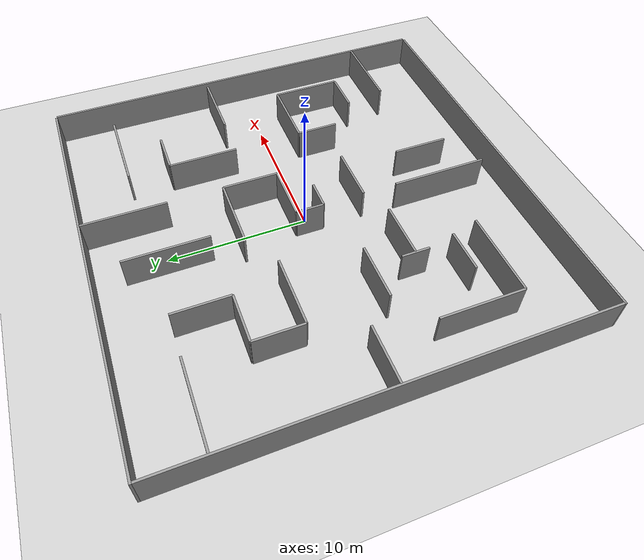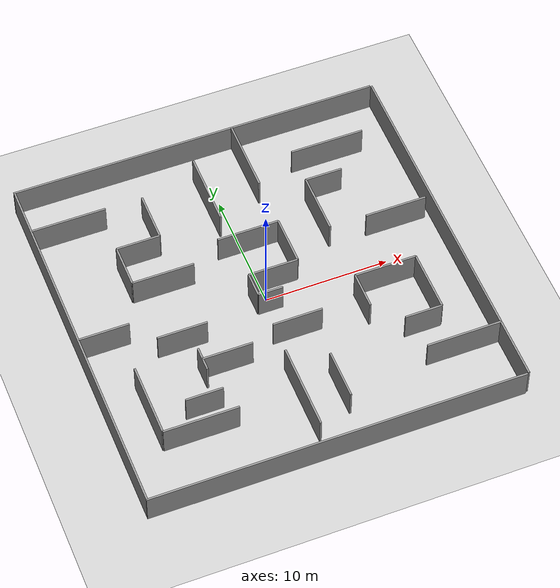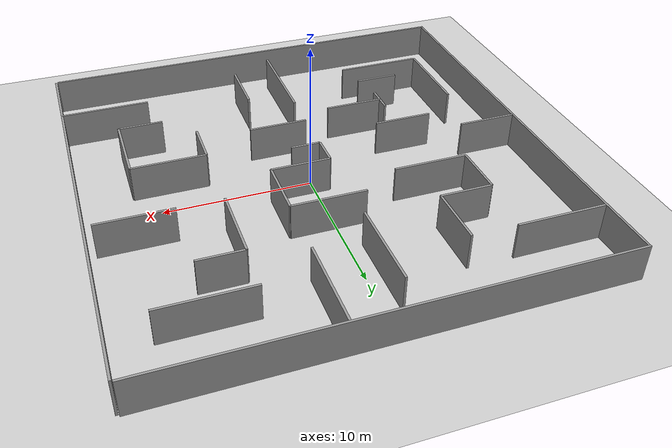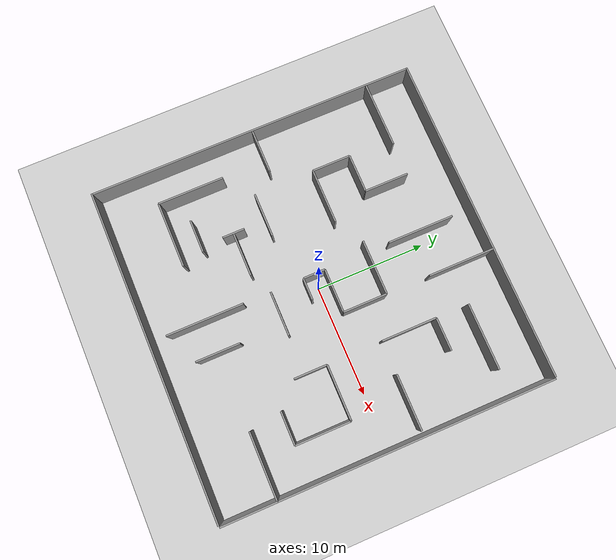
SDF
ć<sdf version="1.6">
  <world name="empty">
    <physics name="1ms" type="ignored">
      <max_step_size>0.001</max_step_size>
      <real_time_factor>1.0</real_time_factor>
    </physics>
    <plugin
      filename="gz-sim-physics-system"
      name="gz::sim::systems::Physics">
    </plugin>
    <plugin
      filename="gz-sim-user-commands-system"
      name="gz::sim::systems::UserCommands">
    </plugin>
    <plugin
      filename="gz-sim-scene-broadcaster-system"
      name="gz::sim::systems::SceneBroadcaster">
    </plugin>
    <plugin
      filename="gz-sim-sensors-system"
      name="gz::sim::systems::Sensors">
      <render_engine>ogre2</render_engine>
    </plugin>
    <plugin
      filename="gz-sim-contact-system"
      name="gz::sim::systems::Contact">
    </plugin>

    <light type="directional" name="sun">
      <cast_shadows>true</cast_shadows>
      <pose>0 0 10 0 0 0</pose>
      <diffuse>0.8 0.8 0.8 1</diffuse>
      <specular>0.2 0.2 0.2 1</specular>
      <attenuation>
        <range>1000</range>
        <constant>0.9</constant>
        <linear>0.01</linear>
        <quadratic>0.001</quadratic>
      </attenuation>
      <direction>-0.5 0.1 -0.9</direction>
    </light>

    <model name="ground_plane">
      <static>true</static>
      <link name="link">
        <collision name="collision">
          <geometry>
            <plane>
              <normal>0 0 1</normal>
              <size>100 100</size>
            </plane>
          </geometry>
        </collision>
        <visual name="visual">
          <geometry>
            <plane>
              <normal>0 0 1</normal>
              <size>100 100</size>
            </plane>
          </geometry>
          <material>
            <ambient>0.8 0.8 0.8 1</ambient>
            <diffuse>0.8 0.8 0.8 1</diffuse>
            <specular>0.8 0.8 0.8 1</specular>
          </material>
        </visual>
      </link>
    </model>

    <include>
      <uri>model://home/joanna/ros2_gz_sim/install/ros_gazebo_simulation/share/ros_gazebo_simulation/worlds/model.sdf</uri>
    </include>

  </world>
</sdf>

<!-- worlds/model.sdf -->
<sdf version='1.6'>
  <model name='room_with_walls_10x10'>
    <pose frame=''>0 0 0 0 -0 0</pose>
    <link name='Wall_Main_1'>
      <collision name='Wall_Main_1_Collision'>
        <geometry>
          <box>
            <size>30 0.15 2.5</size>
          </box>
        </geometry>
        <pose frame=''>0 0 1.25 0 -0 0</pose>
      </collision>
      <visual name='Wall_Main_1_Visual'>
        <pose frame=''>0 0 1.25 0 -0 0</pose>
        <geometry>
          <box>
            <size>30 0.15 2.5</size>
          </box>
        </geometry>
        <material>
          <script>
            <uri>file://media/materials/scripts/gazebo.material</uri>
            <name>Gazebo/Grey</name>
          </script>
          <ambient>1 1 1 1</ambient>
        </material>
        <meta>
          <layer>0</layer>
        </meta>
      </visual>
      <pose frame=''>-0.119159 -15.04416 0 0 -0 0</pose>
    </link>

    <link name='Wall_Main_2'>
      <collision name='Wall_Main_2_Collision'>
        <geometry>
          <box>
            <size>30 0.15 2.5</size>
          </box>
        </geometry>
        <pose frame=''>0 0 1.25 0 -0 0</pose>
      </collision>
      <visual name='Wall_Main_2_Visual'>
        <pose frame=''>0 0 1.25 0 -0 0</pose>
        <geometry>
          <box>
            <size>30 0.15 2.5</size>
          </box>
        </geometry>
        <material>
          <script>
            <uri>file://media/materials/scripts/gazebo.material</uri>
            <name>Gazebo/Grey</name>
          </script>
          <ambient>1 1 1 1</ambient>
        </material>
        <meta>
          <layer>0</layer>
        </meta>
      </visual>
      <pose frame=''>15 -0.002362 0 0 -0 1.5708</pose>
    </link>

    <link name='Wall_Main_3'>
      <collision name='Wall_Main_3_Collision'>
        <geometry>
          <box>
            <size>30 0.15 2.5</size>
          </box>
        </geometry>
        <pose frame=''>0 0 1.25 0 -0 0</pose>
      </collision>
      <visual name='Wall_Main_3_Visual'>
        <pose frame=''>0 0 1.25 0 -0 0</pose>
        <geometry>
          <box>
            <size>30 0.15 2.5</size>
          </box>
        </geometry>
        <material>
          <script>
            <uri>file://media/materials/scripts/gazebo.material</uri>
            <name>Gazebo/Grey</name>
          </script>
          <ambient>1 1 1 1</ambient>
        </material>
        <meta>
          <layer>0</layer>
        </meta>
      </visual>
      <pose frame=''>-0.119159 15.04416 0 0 -0 3.14159</pose>
    </link>

    <link name='Wall_Main_4'>
      <collision name='Wall_Main_4_Collision'>
        <geometry>
          <box>
            <size>30 0.15 2.5</size>
          </box>
        </geometry>
        <pose frame=''>0 0 1.25 0 -0 0</pose>
      </collision>
      <visual name='Wall_Main_4_Visual'>
        <pose frame=''>0 0 1.25 0 -0 0</pose>
        <geometry>
          <box>
            <size>30 0.15 2.5</size>
          </box>
        </geometry>
        <material>
          <script>
            <uri>file://media/materials/scripts/gazebo.material</uri>
            <name>Gazebo/Grey</name>
          </script>
          <ambient>1 1 1 1</ambient>
        </material>
        <meta>
          <layer>0</layer>
        </meta>
      </visual>
      <pose frame=''>-15.04416 -0.002362 0 0 -0 -1.5708</pose>
    </link>

    <link name='Wall_5'>
      <collision name='Wall_5_Collision'>
        <geometry>
          <box>
            <size>2 0.15 2.5</size>
          </box>
        </geometry>
        <pose frame=''>0 0 1.25 0 -0 0</pose>
      </collision>
      <visual name='Wall_5_Visual'>
        <pose frame=''>0 0 1.25 0 -0 0</pose>
        <geometry>
          <box>
            <size>2 0.15 2.5</size>
          </box>
        </geometry>
        <material>
          <script>
            <uri>file://media/materials/scripts/gazebo.material</uri>
            <name>Gazebo/Grey</name>
          </script>
          <ambient>1 1 1 1</ambient>
        </material>
        <meta>
          <layer>0</layer>
        </meta>
      </visual>
      <pose frame=''>-1 0 0 0 -0 -1.5708</pose>
    </link>

    <link name='Wall_6'>
      <collision name='Wall_6_Collision'>
        <geometry>
          <box>
            <size>0.15 2 2.5</size>
          </box>
        </geometry>
        <pose frame=''>0 0 1.25 0 -0 0</pose>
      </collision>
      <visual name='Wall_6_Visual'>
        <pose frame=''>0 0 1.25 0 -0 0</pose>
        <geometry>
          <box>
            <size>0.15 2 2.5</size>
          </box>
        </geometry>
        <material>
          <script>
            <uri>file://media/materials/scripts/gazebo.material</uri>
            <name>Gazebo/Grey</name>
          </script>
          <ambient>1 1 1 1</ambient>
        </material>
        <meta>
          <layer>0</layer>
        </meta>
      </visual>
      <pose frame=''>0 -1 0 0 -0 -1.5708</pose>
    </link>

    <link name='Wall_7'>
      <collision name='Wall_7_Collision'>
        <geometry>
          <box>
            <size>0.15 4 2.5</size>
          </box>
        </geometry>
        <pose frame=''>0 0 1.25 0 -0 0</pose>
      </collision>
      <visual name='Wall_7_Visual'>
        <pose frame=''>0 0 1.25 0 -0 0</pose>
        <geometry>
          <box>
            <size>0.15 4 2.5</size>
          </box>
        </geometry>
        <material>
          <script>
            <uri>file://media/materials/scripts/gazebo.material</uri>
            <name>Gazebo/Grey</name>
          </script>
          <ambient>1 1 1 1</ambient>
        </material>
        <meta>
          <layer>0</layer>
        </meta>
      </visual>
      <pose frame=''>1 1 0 0 -0 -1.5708</pose>
    </link>

    <!-- Additional walls to create a labyrinth-like structure -->

    <link name='Wall_8'>
      <collision name='Wall_8_Collision'>
        <geometry>
          <box>
            <size>5 0.15 2.5</size>
          </box>
        </geometry>
        <pose frame=''>0 0 1.25 0 -0 0</pose>
      </collision>
      <visual name='Wall_8_Visual'>
        <pose frame=''>0 0 1.25 0 -0 0</pose>
        <geometry>
          <box>
            <size>5 0.15 2.5</size>
          </box>
        </geometry>
        <material>
          <script>
            <uri>file://media/materials/scripts/gazebo.material</uri>
            <name>Gazebo/Grey</name>
          </script>
          <ambient>1 1 1 1</ambient>
        </material>
      </visual>
      <pose frame=''>6.5 5.5 0 0 -0 1.5708</pose>
    </link>

    <link name='Wall_9'>
      <collision name='Wall_9_Collision'>
        <geometry>
          <box>
            <size>4 0.15 2.5</size>
          </box>
        </geometry>
        <pose frame=''>0 0 1.25 0 -0 0</pose>
      </collision>
      <visual name='Wall_9_Visual'>
        <pose frame=''>0 0 1.25 0 -0 0</pose>
        <geometry>
          <box>
            <size>4 0.15 2.5</size>
          </box>
        </geometry>
        <material>
          <script>
            <uri>file://media/materials/scripts/gazebo.material</uri>
            <name>Gazebo/Grey</name>
          </script>
          <ambient>1 1 1 1</ambient>
        </material>
      </visual>
      <pose frame=''>-7.5 -2 0 0 -0 0</pose>
    </link>

    <link name='Wall_10'>
      <collision name='Wall_10_Collision'>
        <geometry>
          <box>
            <size>4 0.15 2.5</size>
          </box>
        </geometry>
        <pose frame=''>0 0 1.25 0 -0 0</pose>
      </collision>
      <visual name='Wall_10_Visual'>
        <pose frame=''>0 0 1.25 0 -0 0</pose>
        <geometry>
          <box>
            <size>4 0.15 2.5</size>
          </box>
        </geometry>
        <material>
          <script>
            <uri>file://media/materials/scripts/gazebo.material</uri>
            <name>Gazebo/Grey</name>
          </script>
          <ambient>1 1 1 1</ambient>
        </material>
      </visual>
      <pose frame=''>2 -10 0 0 -0 1.5708</pose>
    </link>

    <!-- A shorter wall to add more maze complexity -->
    <link name='Wall_11'>
      <collision name='Wall_11_Collision'>
        <geometry>
          <box>
            <size>2 0.15 2.5</size>
          </box>
        </geometry>
        <pose frame=''>0 0 1.25 0 -0 0</pose>
      </collision>
      <visual name='Wall_11_Visual'>
        <pose frame=''>0 0 1.25 0 -0 0</pose>
        <geometry>
          <box>
            <size>2 0.15 2.5</size>
          </box>
        </geometry>
        <material>
          <script>
            <uri>file://media/materials/scripts/gazebo.material</uri>
            <name>Gazebo/Grey</name>
          </script>
          <ambient>1 1 1 1</ambient>
        </material>
      </visual>
      <pose frame=''>-7 -5 0 0 -0 1.5708</pose>
    </link>

    <link name='Room1_Wall_1'>
      <collision name='Room1_Wall_1_Collision'>
        <geometry>
          <box>
            <size>3.5 0.15 2.5</size>
          </box>
        </geometry>
        <pose frame=''>0 0 1.25 0 -0 0</pose>
      </collision>
      <visual name='Room1_Wall_1_Visual'>
        <pose frame=''>0 0 1.25 0 -0 0</pose>
        <geometry>
          <box>
            <size>3.5 0.15 2.5</size>
          </box>
        </geometry>
        <material>
          <script>
            <uri>file://media/materials/scripts/gazebo.material</uri>
            <name>Gazebo/Grey</name>
          </script>
          <ambient>1 1 1 1</ambient>
        </material>
      </visual>
      <pose frame=''>-7.75 7 0 0 -0 0</pose>
    </link>

    <link name='Room1_Wall_2'>
      <collision name='Room1_Wall_2_Collision'>
        <geometry>
          <box>
            <size>3.5 0.15 2.5</size>
          </box>
        </geometry>
        <pose frame=''>0 0 1.25 0 -0 0</pose>
      </collision>
      <visual name='Room1_Wall_2_Visual'>
        <pose frame=''>0 0 1.25 0 -0 0</pose>
        <geometry>
          <box>
            <size>3.5 0.15 2.5</size>
          </box>
        </geometry>
        <material>
          <script>
            <uri>file://media/materials/scripts/gazebo.material</uri>
            <name>Gazebo/Grey</name>
          </script>
          <ambient>1 1 1 1</ambient>
        </material>
      </visual>
      <pose frame=''>-9.5 5.25 0 0 -0 1.5708</pose>
    </link>

    <link name='Room1_Wall_3'>
      <collision name='Room1_Wall_3_Collision'>
        <geometry>
          <box>
            <size>5 0.15 2.5</size>
          </box>
        </geometry>
        <pose frame=''>0 0 1.25 0 -0 0</pose>
      </collision>
      <visual name='Room1_Wall_3_Visual'>
        <pose frame=''>0 0 1.25 0 -0 0</pose>
        <geometry>
          <box>
            <size>5 0.15 2.5</size>
          </box>
        </geometry>
        <material>
          <script>
            <uri>file://media/materials/scripts/gazebo.material</uri>
            <name>Gazebo/Grey</name>
          </script>
          <ambient>1 1 1 1</ambient>
        </material>
      </visual>
      <pose frame=''>-7 3.5 0 0 -0 0</pose>
    </link>

    <!-- Room 2 (right side) -->
    <link name='Room2_Wall_1'>
      <collision name='Room2_Wall_1_Collision'>
        <geometry>
          <box>
            <size>3 0.15 2.5</size>
          </box>
        </geometry>
        <pose frame=''>0 0 1.25 0 -0 0</pose>
      </collision>
      <visual name='Room2_Wall_1_Visual'>
        <pose frame=''>0 0 1.25 0 -0 0</pose>
        <geometry>
          <box>
            <size>3 0.15 2.5</size>
          </box>
        </geometry>
        <material>
          <script>
            <uri>file://media/materials/scripts/gazebo.material</uri>
            <name>Gazebo/Grey</name>
          </script>
          <ambient>1 1 1 1</ambient>
        </material>
      </visual>
      <pose frame=''>10 -7 0 0 -0 0</pose>
    </link>

    <link name='Room2_Wall_2'>
      <collision name='Room2_Wall_2_Collision'>
        <geometry>
          <box>
            <size>5 0.15 2.5</size>
          </box>
        </geometry>
        <pose frame=''>0 0 1.25 0 -0 0</pose>
      </collision>
      <visual name='Room2_Wall_2_Visual'>
        <pose frame=''>0 0 1.25 0 -0 0</pose>
        <geometry>
          <box>
            <size>5 0.15 2.5</size>
          </box>
        </geometry>
        <material>
          <script>
            <uri>file://media/materials/scripts/gazebo.material</uri>
            <name>Gazebo/Grey</name>
          </script>
          <ambient>1 1 1 1</ambient>
        </material>
      </visual>
      <pose frame=''>11.5 -4.5 0 0 -0 1.5708</pose>
    </link>

    <link name='Room2_Wall_3'>
      <collision name='Room2_Wall_3_Collision'>
        <geometry>
          <box>
            <size>5 0.15 2.5</size>
          </box>
        </geometry>
        <pose frame=''>0 0 1.25 0 -0 0</pose>
      </collision>
      <visual name='Room2_Wall_3_Visual'>
        <pose frame=''>0 0 1.25 0 -0 0</pose>
        <geometry>
          <box>
            <size>5 0.15 2.5</size>
          </box>
        </geometry>
        <material>
          <script>
            <uri>file://media/materials/scripts/gazebo.material</uri>
            <name>Gazebo/Grey</name>
          </script>
          <ambient>1 1 1 1</ambient>
        </material>
      </visual>
      <pose frame=''>9 -2 0 0 -0 0</pose>
    </link>

        <link name='Room2_Wall_4'>
      <collision name='Room2_Wall_3_Collision'>
        <geometry>
          <box>
            <size>3 0.15 2.5</size>
          </box>
        </geometry>
        <pose frame=''>0 0 1.25 0 -0 0</pose>
      </collision>
      <visual name='Room2_Wall_3_Visual'>
        <pose frame=''>0 0 1.25 0 -0 0</pose>
        <geometry>
          <box>
            <size>3 0.15 2.5</size>
          </box>
        </geometry>
        <material>
          <script>
            <uri>file://media/materials/scripts/gazebo.material</uri>
            <name>Gazebo/Grey</name>
          </script>
          <ambient>1 1 1 1</ambient>
        </material>
      </visual>
      <pose frame=''>6.5 -3.5 0 0 -0 1.5708</pose>
    </link>

    <!-- Additional walls inside the main area for more labyrinth complexity -->
    <link name='Room3_Wall_1'>
      <collision name='Room3_Wall_1_Collision'>
        <geometry>
          <box>
            <size>4 0.15 2.5</size>
          </box>
        </geometry>
        <pose frame=''>0 0 1.25 0 -0 0</pose>
      </collision>
      <visual name='Room3_Wall_1_Visual'>
        <pose frame=''>0 0 1.25 0 -0 0</pose>
        <geometry>
          <box>
            <size>4 0.15 2.5</size>
          </box>
        </geometry>
        <material>
          <script>
            <uri>file://media/materials/scripts/gazebo.material</uri>
            <name>Gazebo/Grey</name>
          </script>
          <ambient>1 1 1 1</ambient>
        </material>
      </visual>
      <pose frame=''>3 3 0 0 -0 1.5708</pose>
    </link>

     <!-- Additional Walls to further divide space into smaller sections -->
    <link name='Room3_Wall_2'>
      <collision name='Room3_Wall_2_Collision'>
        <geometry>
          <box>
            <size>5 0.15 2.5</size>
          </box>
        </geometry>
        <pose frame=''>0.5 5 1.25 0 -0 0</pose>
      </collision>
      <visual name='Room3_Wall_2_Visual'>
        <pose frame=''>0.5 5 1.25 0 -0 0</pose>
        <geometry>
          <box>
            <size>5 0.15 2.5</size>
          </box>
        </geometry>
        <material>
          <script>
            <uri>file://media/materials/scripts/gazebo.material</uri>
            <name>Gazebo/Grey</name>
          </script>
          <ambient>1 1 1 1</ambient>
        </material>
      </visual>
    </link>

     <link name='Wall_12'>
      <collision name='Wall_12_Collision'>
        <geometry>
          <box>
            <size>0.15 4 2.5</size>
          </box>
        </geometry>
        <pose frame=''>-13 0 1.25 0 -0 1.5708</pose>
      </collision>
      <visual name='Wall_12_Visual'>
        <pose frame=''>-13 0 1.25 0 -0 1.5708</pose>
        <geometry>
          <box>
            <size>0.15 4 2.5</size>
          </box>
        </geometry>
        <material>
          <script>
            <uri>file://media/materials/scripts/gazebo.material</uri>
            <name>Gazebo/Grey</name>
          </script>
          <ambient>1 1 1 1</ambient>
        </material>
      </visual>
    </link>

    <link name='Wall_13'>
      <collision name='Wall_13_Collision'>
        <geometry>
          <box>
            <size>0.15 5 2.5</size>
          </box>
        </geometry>
        <pose frame=''>12 3 1.25 0 -0 1.5708</pose>
      </collision>
      <visual name='Wall_13_Visual'>
        <pose frame=''>12 3 1.25 0 -0 1.5708</pose>
        <geometry>
          <box>
            <size>0.15 5 2.5</size>
          </box>
        </geometry>
        <material>
          <script>
            <uri>file://media/materials/scripts/gazebo.material</uri>
            <name>Gazebo/Grey</name>
          </script>
          <ambient>1 1 1 1</ambient>
        </material>
      </visual>
    </link>

    <link name='Wall_60'>
      <collision name='Wall_60_Collision'>
        <geometry>
          <box>
            <size>0.15 6 2.5</size>
          </box>
        </geometry>
        <pose frame=''>-9 -10 1.25 0 -0 1.5708</pose>
      </collision>
      <visual name='Wall_60_Visual'>
        <pose frame=''>-9 -10 1.25 0 -0 1.5708</pose>
        <geometry>
          <box>
            <size>0.15 6 2.5</size>
          </box>
        </geometry>
        <material>
          <script>
            <uri>file://media/materials/scripts/gazebo.material</uri>
            <name>Gazebo/Grey</name>
          </script>
          <ambient>1 1 1 1</ambient>
        </material>
      </visual>
    </link>

    <!-- Short Wall to create a section in the top-left corner -->
    <link name='Wall_61'>
      <collision name='Wall_61_Collision'>
        <geometry>
          <box>
            <size>6 0.15 2.5</size>
          </box>
        </geometry>
        <pose frame=''>-12 11 1.25 0 -0 0</pose>
      </collision>
      <visual name='Wall_61_Visual'>
        <pose frame=''>-12 11 1.25 0 -0 0</pose>
        <geometry>
          <box>
            <size>6 0.15 2.5</size>
          </box>
        </geometry>
        <material>
          <script>
            <uri>file://media/materials/scripts/gazebo.material</uri>
            <name>Gazebo/Grey</name>
          </script>
          <ambient>1 1 1 1</ambient>
        </material>
      </visual>
    </link>

    <!-- Short Wall to create a section in the bottom-right corner -->
    <link name='Wall_62'>
      <collision name='Wall_62_Collision'>
        <geometry>
          <box>
            <size>6 0.15 2.5</size>
          </box>
        </geometry>
        <pose frame=''>12 -10 1.25 0 -0 0</pose>
      </collision>
      <visual name='Wall_62_Visual'>
        <pose frame=''>12 -10 1.25 0 -0 0</pose>
        <geometry>
          <box>
            <size>6 0.15 2.5</size>
          </box>
        </geometry>
        <material>
          <script>
            <uri>file://media/materials/scripts/gazebo.material</uri>
            <name>Gazebo/Grey</name>
          </script>
          <ambient>1 1 1 1</ambient>
        </material>
      </visual>
    </link>

    <!-- Short Wall to create a section in the top-right corner -->
    <link name='Wall_63'>
      <collision name='Wall_63_Collision'>
        <geometry>
          <box>
            <size>0.15 6 2.5</size>
          </box>
        </geometry>
        <pose frame=''>9.5 11 1.25 0 -0 1.5708</pose>
      </collision>
      <visual name='Wall_63_Visual'>
        <pose frame=''>9.5 11 1.25 0 -0 1.5708</pose>
        <geometry>
          <box>
            <size>0.15 6 2.5</size>
          </box>
        </geometry>
        <material>
          <script>
            <uri>file://media/materials/scripts/gazebo.material</uri>
            <name>Gazebo/Grey</name>
          </script>
          <ambient>1 1 1 1</ambient>
        </material>
      </visual>
    </link>

    <link name='Wall_65'>
      <collision name='Wall_65_Collision'>
        <geometry>
          <box>
            <size>4 0.15 2.5</size>
          </box>
        </geometry>
        <pose frame=''>-5 -5 1.25 0 -0 0</pose>
      </collision>
      <visual name='Wall_65_Visual'>
        <pose frame=''>-5 -5 1.25 0 -0 0</pose>
        <geometry>
          <box>
            <size>4 0.15 2.5</size>
          </box>
        </geometry>
        <material>
          <script>
            <uri>file://media/materials/scripts/gazebo.material</uri>
            <name>Gazebo/Grey</name>
          </script>
          <ambient>1 1 1 1</ambient>
        </material>
      </visual>
    </link>

    <link name='Wall_80'>
      <collision name='Wall_80_Collision'>
        <geometry>
          <box>
            <size>0.15 3 2.5</size>
          </box>
        </geometry>
        <pose frame=''>-8 -8 1.25 0 -0 1.5708</pose>
      </collision>
      <visual name='Wall_80_Visual'>
        <pose frame=''>-8 -8 1.25 0 -0 1.5708</pose>
        <geometry>
          <box>
            <size>0.15 3 2.5</size>
          </box>
        </geometry>
        <material>
          <script>
            <uri>file://media/materials/scripts/gazebo.material</uri>
            <name>Gazebo/Grey</name>
          </script>
          <ambient>1 1 1 1</ambient>
        </material>
      </visual>
    </link>

    <!-- Short Wall to divide center area along y-axis -->
    <link name='Wall_82'>
      <collision name='Wall_82_Collision'>
        <geometry>
          <box>
            <size>0.15 4 2.5</size>
          </box>
        </geometry>
        <pose frame=''>1 -4 1.25 0 -0 1.5708</pose>
      </collision>
      <visual name='Wall_82_Visual'>
        <pose frame=''>1 -4 1.25 0 -0 1.5708</pose>
        <geometry>
          <box>
            <size>0.15 4 2.5</size>
          </box>
        </geometry>
        <material>
          <script>
            <uri>file://media/materials/scripts/gazebo.material</uri>
            <name>Gazebo/Grey</name>
          </script>
          <ambient>1 1 1 1</ambient>
        </material>
      </visual>
    </link>

    <!-- Short Wall in the top-right area along y-axis -->
    <link name='Wall_84'>
      <collision name='Wall_84_Collision'>
        <geometry>
          <box>
            <size>0.15 3 2.5</size>
          </box>
        </geometry>
        <pose frame=''>8 8 1.25 0 -0 1.5708</pose>
      </collision>
      <visual name='Wall_84_Visual'>
        <pose frame=''>8 8 1.25 0 -0 1.5708</pose>
        <geometry>
          <box>
            <size>0.15 3 2.5</size>
          </box>
        </geometry>
        <material>
          <script>
            <uri>file://media/materials/scripts/gazebo.material</uri>
            <name>Gazebo/Grey</name>
          </script>
          <ambient>1 1 1 1</ambient>
        </material>
      </visual>
    </link>

  <link name='Wall_90'>
    <collision name='Wall_90_Collision'>
        <geometry>
            <box>
                <size>4 0.15 2.5</size>
            </box>
        </geometry>
        <pose frame=''>-6 9 1.25 0 -0 1.5708</pose>
    </collision>
    <visual name='Wall_90_Visual'>
        <pose frame=''>-6 9 1.25 0 -0 1.5708</pose>
        <geometry>
            <box>
                <size>4 0.15 2.5</size>
            </box>
        </geometry>
        <material>
            <script>
                <uri>file://media/materials/scripts/gazebo.material</uri>
                <name>Gazebo/Grey</name>
            </script>
            <ambient>1 1 1 1</ambient>
        </material>
    </visual>
</link>

<link name='Wall_91'>
    <collision name='Wall_91_Collision'>
        <geometry>
            <box>
                <size>6 0.15 2.5</size>
            </box>
        </geometry>
        <pose frame=''>3 12 1.25 0 -0 1.5708</pose>
    </collision>
    <visual name='Wall_91_Visual'>
        <pose frame=''>3 12 1.25 0 -0 1.5708</pose>
        <geometry>
            <box>
                <size>6 0.15 2.5</size>
            </box>
        </geometry>
        <material>
            <script>
                <uri>file://media/materials/scripts/gazebo.material</uri>
                <name>Gazebo/Grey</name>
            </script>
            <ambient>1 1 1 1</ambient>
        </material>
    </visual>
</link>

<link name='Wall_92'>
    <collision name='Wall_92_Collision'>
        <geometry>
            <box>
                <size>6 0.15 2.5</size>
            </box>
        </geometry>
        <pose frame=''>-1 10 1.25 0 -0 1.5708</pose>
    </collision>
    <visual name='Wall_92_Visual'>
        <pose frame=''>-1 10 1.25 0 -0 1.5708</pose>
        <geometry>
            <box>
                <size>6 0.15 2.5</size>
            </box>
        </geometry>
        <material>
            <script>
                <uri>file://media/materials/scripts/gazebo.material</uri>
                <name>Gazebo/Grey</name>
            </script>
            <ambient>1 1 1 1</ambient>
        </material>
    </visual>
</link>

<link name='Wall_93'>
    <collision name='Wall_93_Collision'>
        <geometry>
            <box>
                <size>7 0.15 2.5</size>
            </box>
        </geometry>
        <pose frame=''>-1 -10 1.25 0 -0 1.5708</pose>
    </collision>
    <visual name='Wall_93_Visual'>
        <pose frame=''>-1 -10 1.25 0 -0 1.5708</pose>
        <geometry>
            <box>
                <size>7 0.15 2.5</size>
            </box>
        </geometry>
        <material>
            <script>
                <uri>file://media/materials/scripts/gazebo.material</uri>
                <name>Gazebo/Grey</name>
            </script>
            <ambient>1 1 1 1</ambient>
        </material>
    </visual>
</link>

<link name='Wall_94'>
    <collision name='Wall_94_Collision'>
        <geometry>
            <box>
                <size>6 0.15 2.5</size>
            </box>
        </geometry>
        <pose frame=''>-12 -7 1.25 0 -0 1.5708</pose>
    </collision>
    <visual name='Wall_94_Visual'>
        <pose frame=''>-12 -7 1.25 0 -0 1.5708</pose>
        <geometry>
            <box>
                <size>6 0.15 2.5</size>
            </box>
        </geometry>
        <material>
            <script>
                <uri>file://media/materials/scripts/gazebo.material</uri>
                <name>Gazebo/Grey</name>
            </script>
            <ambient>1 1 1 1</ambient>
        </material>
    </visual>
</link>

    <static>1</static>
  </model>
</sdf>
